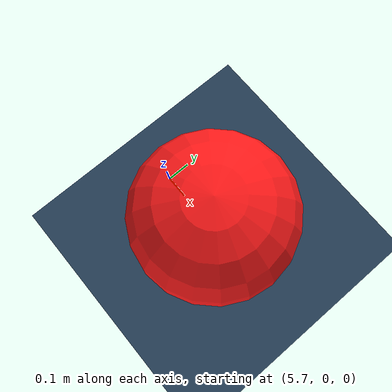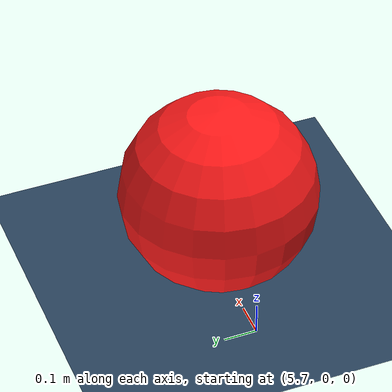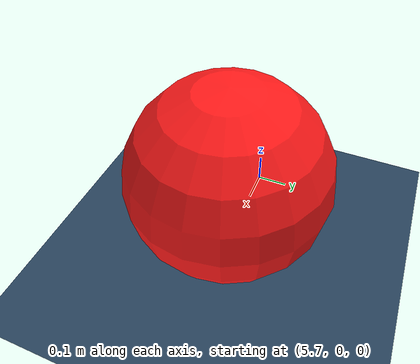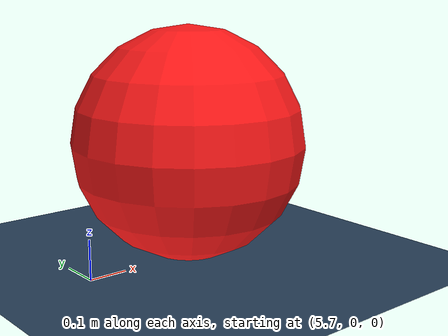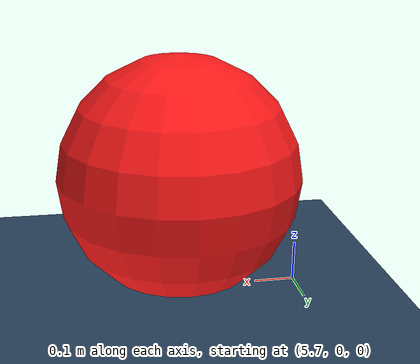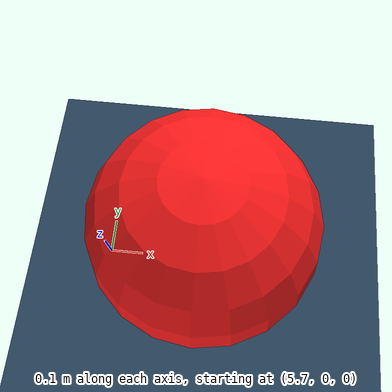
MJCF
<mujoco model="my_robot">
    <option timestep="0.01" gravity="0 0 -9.81"/>
    <default>
        <geom friction="1 0.005 0.0001" />
    </default>

    <visual>
        <quality shadowsize="4096"/>
        <headlight diffuse="0.4 0.4 0.4" ambient="0.25 0.25 0.25" specular="0 0 0"/>
        <rgba haze="0.15 0.25 0.35 1"/>
        <global azimuth="-130" elevation="-20"/>
    </visual>

    <asset>
        <texture type="skybox" builtin="gradient" rgb1="0.3 0.5 0.7" rgb2="0.08 0.12 0.16" width="512" height="3072"/>
        <texture type="2d" name="groundplane" builtin="checker" rgb1="0.2 0.3 0.4" rgb2="0.1 0.2 0.3" width="300" height="300"/>
        <material name="groundplane" texture="groundplane" texuniform="true" texrepeat="5 5"/>
        <material name="MatRed" rgba="1 0.1 0.1 1"/>
    </asset>

    <worldbody>
        <geom name="floor" size="0 0 0.05" type="plane" material="groundplane"/>
        <light directional="true" pos="0 0 10" dir="-0.3 0.1 -0.9" diffuse="0.6 0.6 0.6" specular="0 0 0" castshadow="true"/>
        <body name="teleporting_ball" pos="6 0 0.3">
            <freejoint name="teleporting_ball_joint"/>
            <geom type="sphere" size="0.3" material="MatRed" mass="1"/>
        </body>
    </worldbody>

</mujoco>
